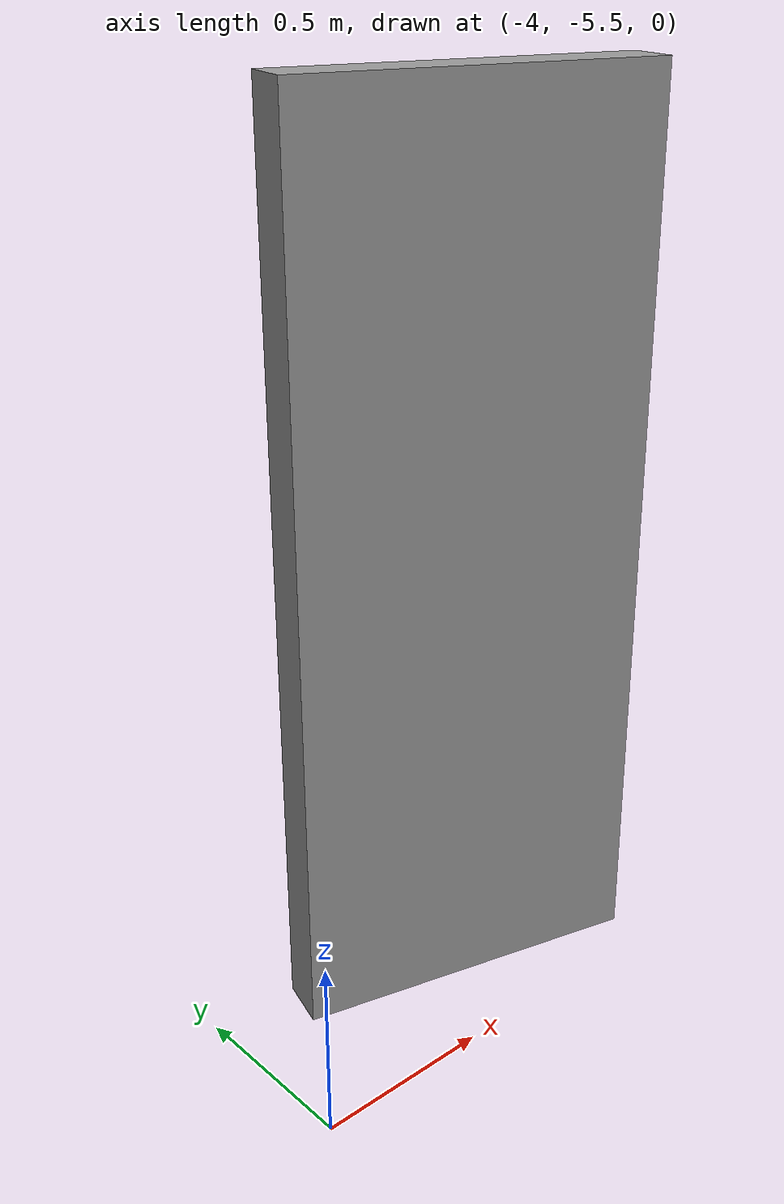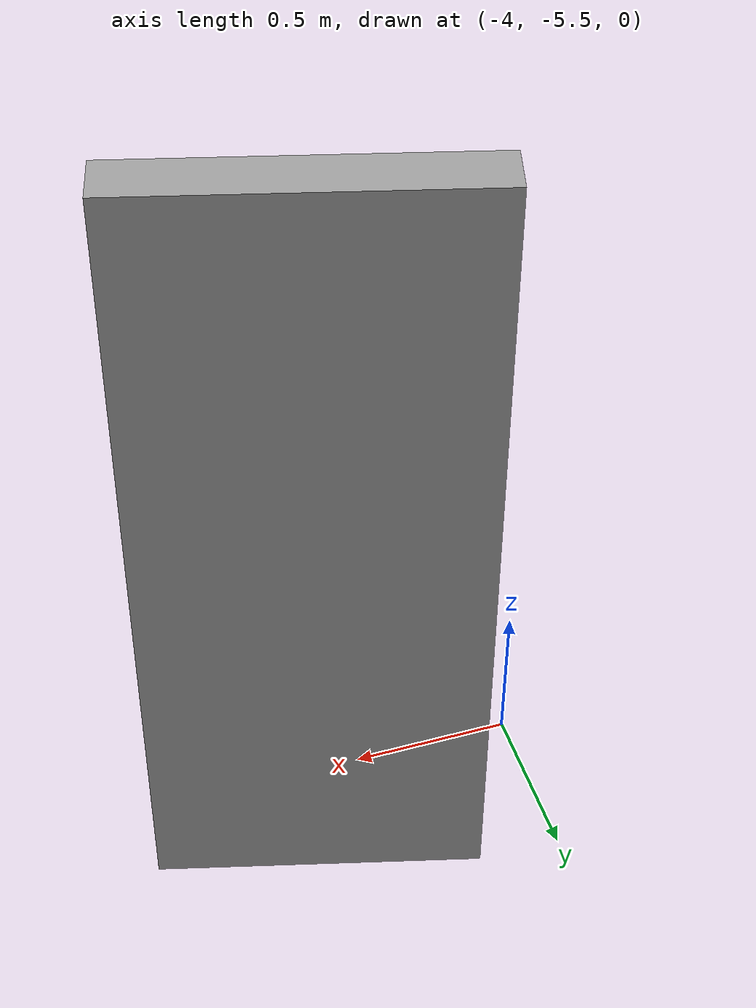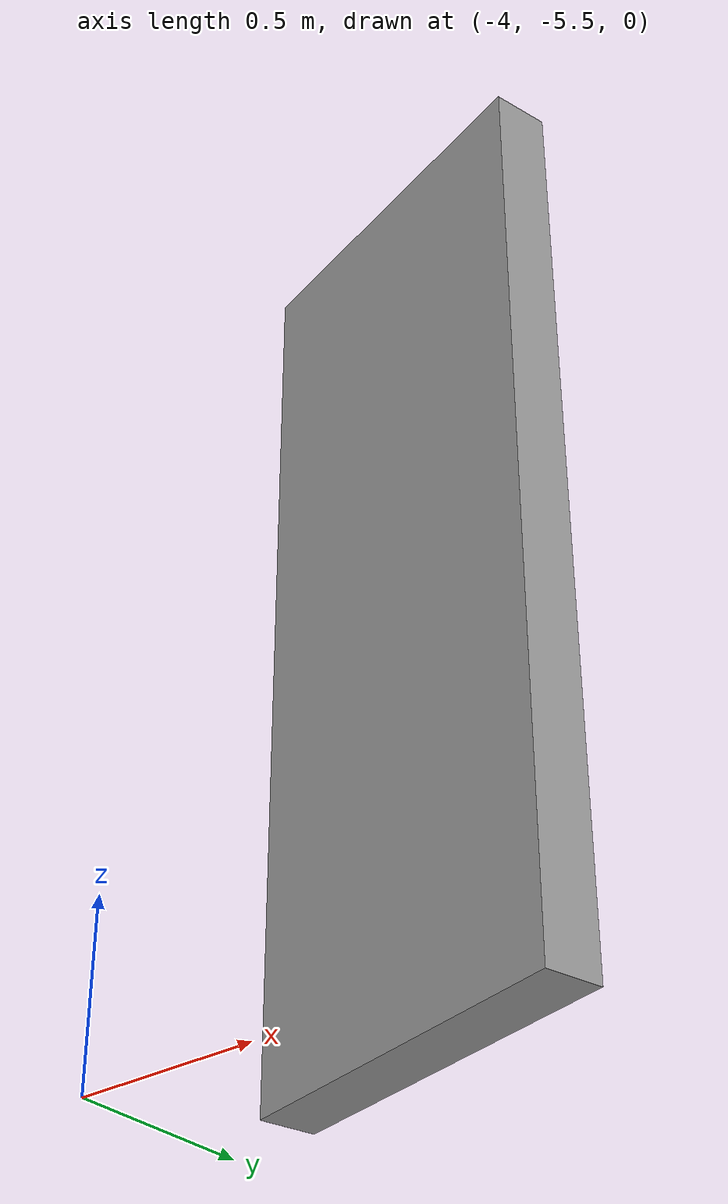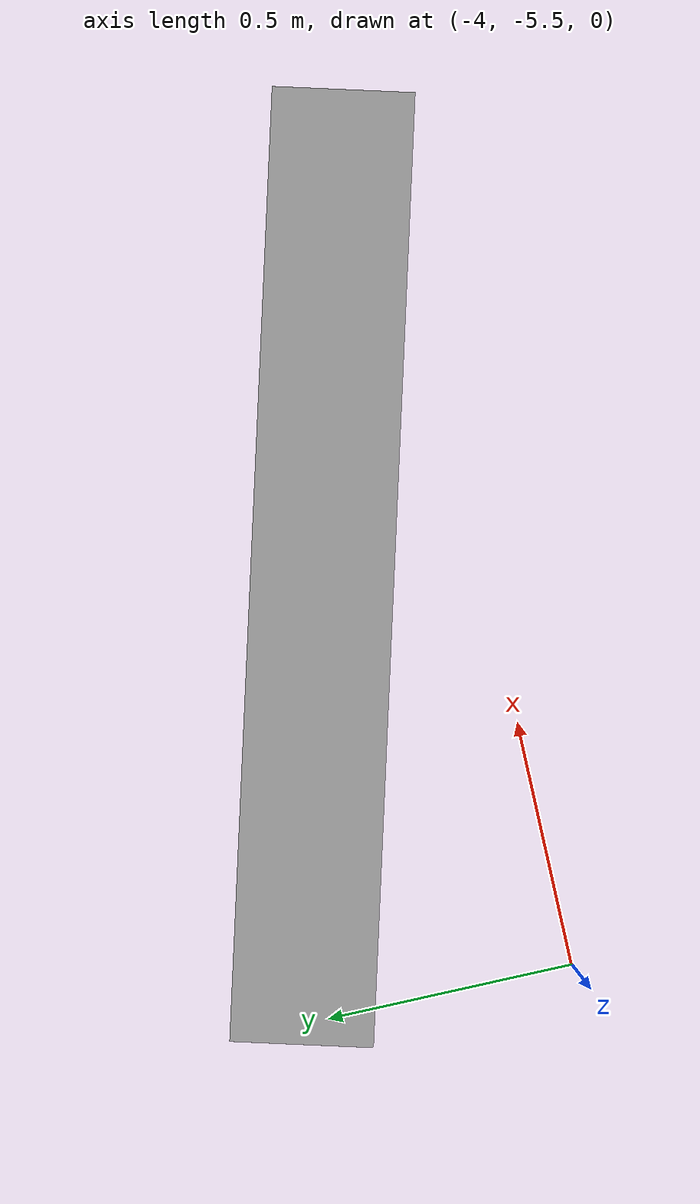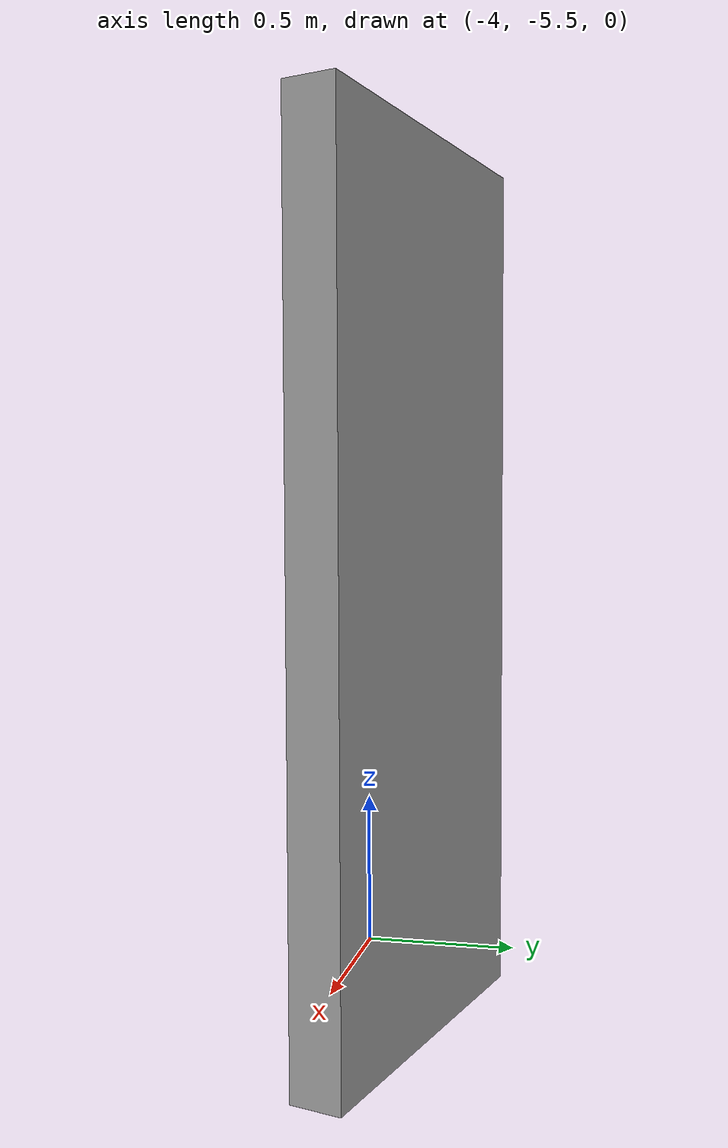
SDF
<?xml version='1.0'?>
<sdf version='1.6'>
  <model name='Untitled'>
    <pose frame=''>-3.28052 -5.21 0 0 -0 0</pose>
    <link name='Wall_2'>
      <collision name='Wall_2_Collision'>
        <geometry>
          <box>
            <size>1 0.15 2.5</size>
          </box>
        </geometry>
        <pose frame=''>0 0 1.25 0 -0 0</pose>
      </collision>
      <visual name='Wall_2_Visual'>
        <pose frame=''>0 0 1.25 0 -0 0</pose>
        <geometry>
          <box>
            <size>1 0.15 2.5</size>
          </box>
        </geometry>
        <material>
          <script>
            <uri>file://media/materials/scripts/gazebo.material</uri>
            <name>Gazebo/Grey</name>
          </script>
          <ambient>1 1 1 1</ambient>
        </material>
        <meta>
          <layer>0</layer>
        </meta>
      </visual>
      <pose frame=''>0 0 0 0 -0 2.87979</pose>
    </link>
    <static>1</static>
  </model>
</sdf>
